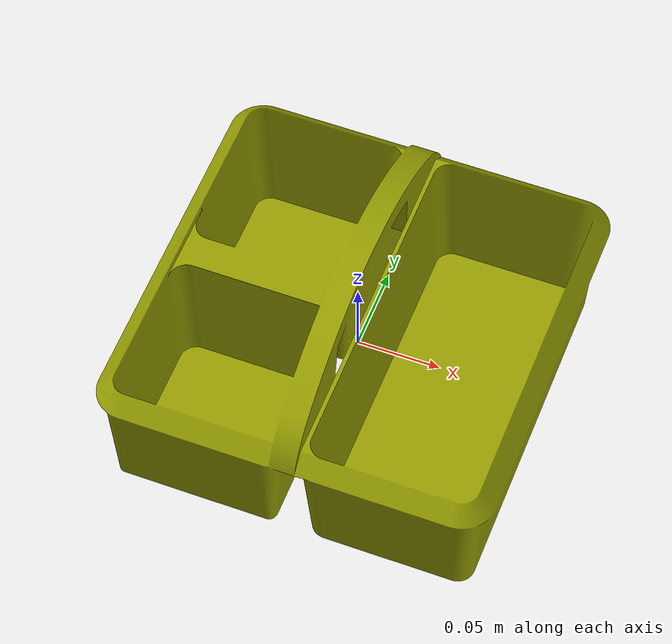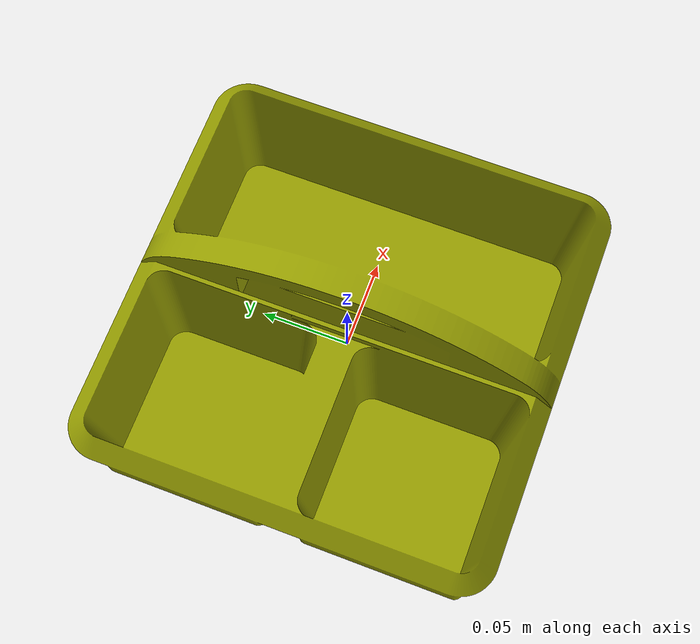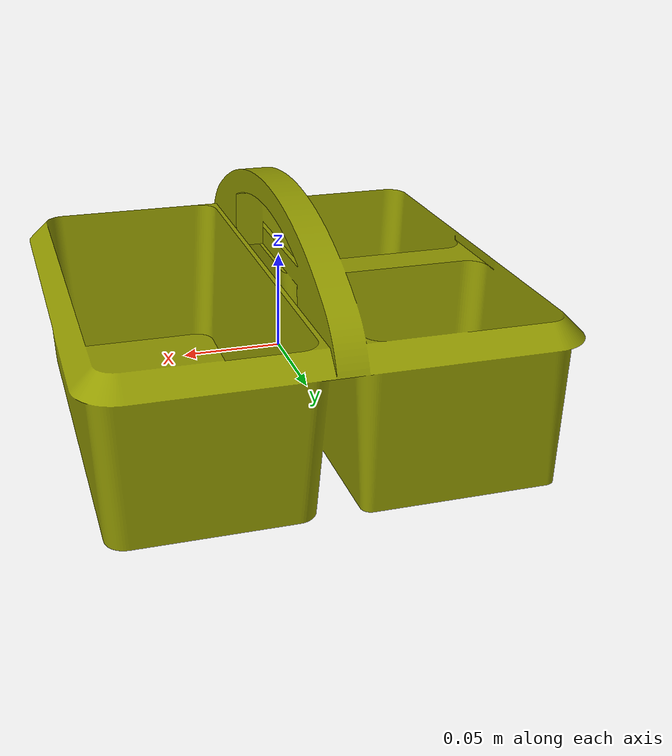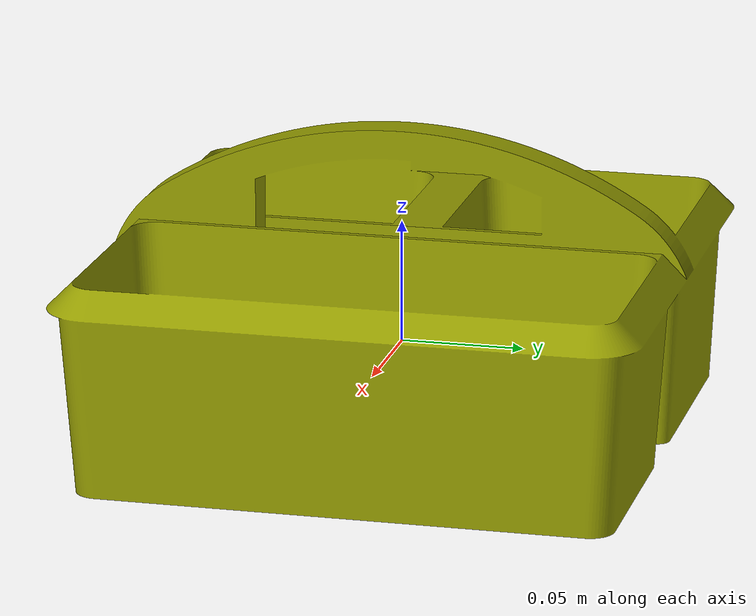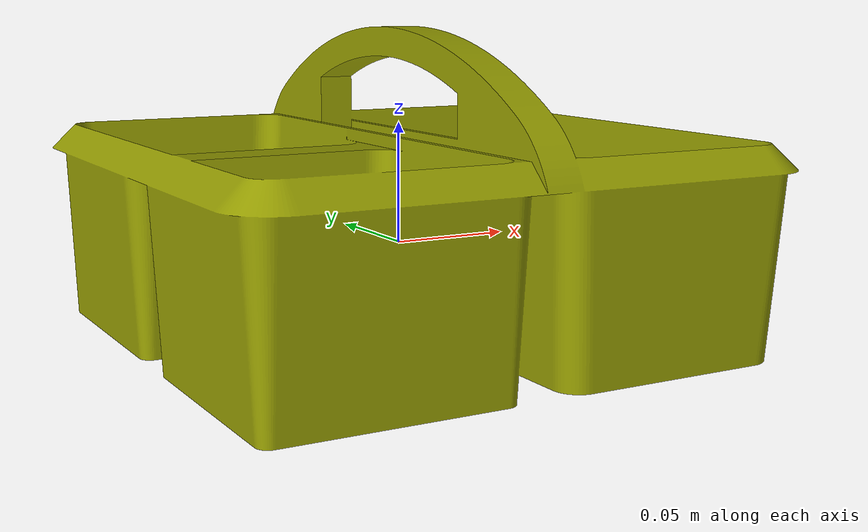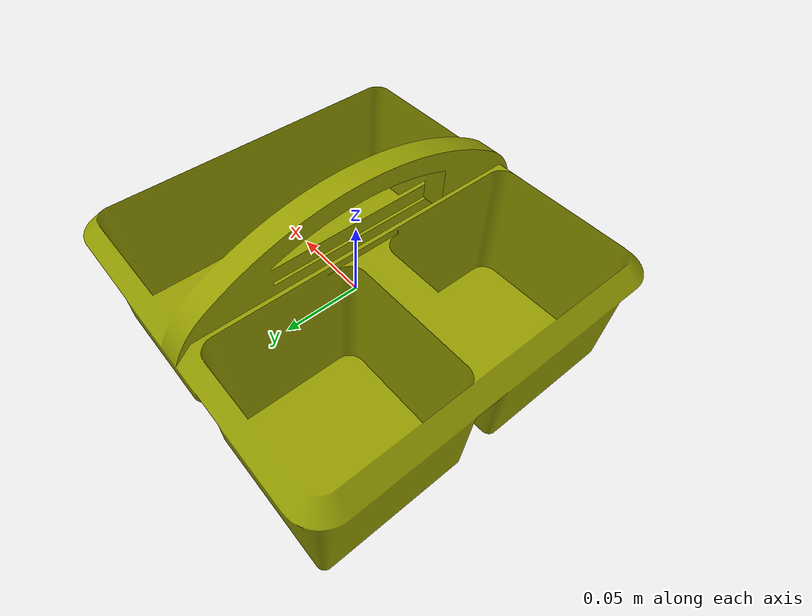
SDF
<?xml version="1.0" ?>
<sdf version='1.4'>
  <model name="caddy_yellow">
      <static>0</static>
      <link name='link'>
        <inertial>
          <mass>0.0680389</mass>
          <inertia>
            <ixx>0.00040636575898</ixx>
            <ixy>0.000000</ixy>
            <ixz>0.000000</ixz>
            <iyy>0.00040636575898</iyy>
            <iyz>0.000000</iyz>
            <izz>0.000625974918075</izz>
          </inertia>
        </inertial>
        <collision name='collision'>
          <geometry>
            <mesh>
              <uri>model://caddy_yellow/meshes/Romanoff_Small_Utility_Caddy_cof.stl</uri>
              <scale>1 1 1</scale>
            </mesh>
          </geometry>
          <surface>
            <friction>
              <ode>
                <mu>1.0</mu>
                <mu2>1.0</mu2>
              </ode>
            </friction>
          </surface>
        </collision>

        <visual name='visual'>
          <geometry>
            <mesh>
              <uri>model://caddy_yellow/meshes/Romanoff_Small_Utility_Caddy_cof_yellow.dae</uri>
              <scale>1 1 1</scale>
            </mesh>
          </geometry>
        </visual>
        <velocity_decay>
          <linear>0.000000</linear>
          <angular>0.000000</angular>
        </velocity_decay>
        <self_collide>0</self_collide>
        <kinematic>0</kinematic>
        <gravity>1</gravity>
      </link>
  </model>
</sdf>
